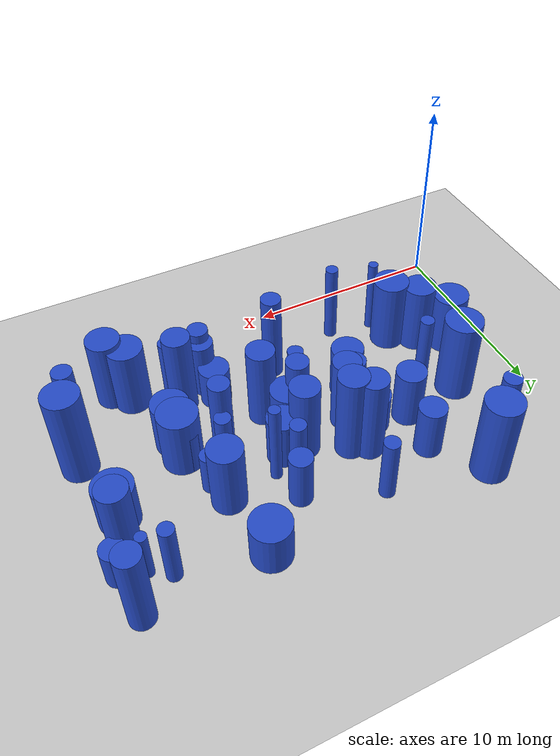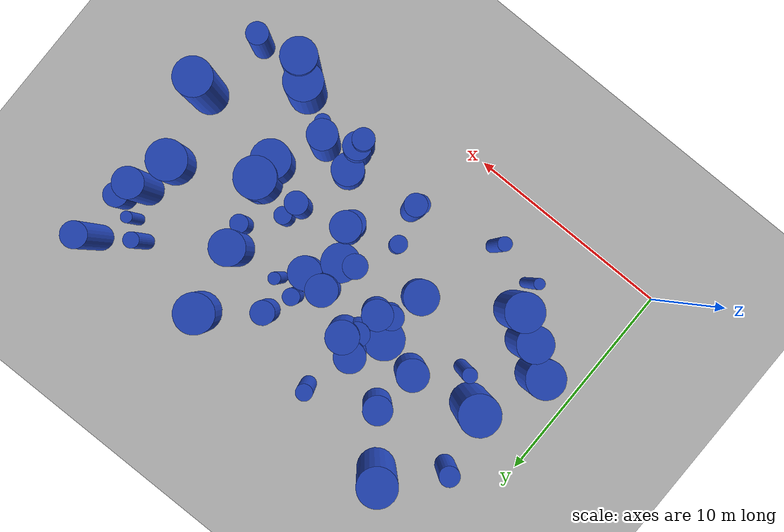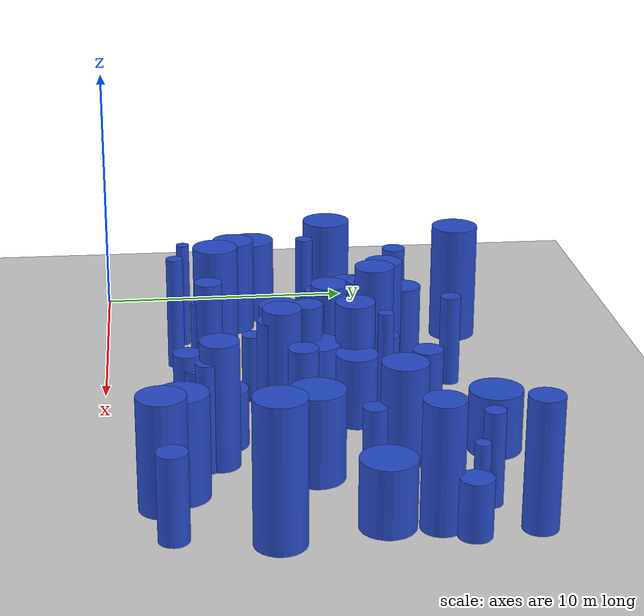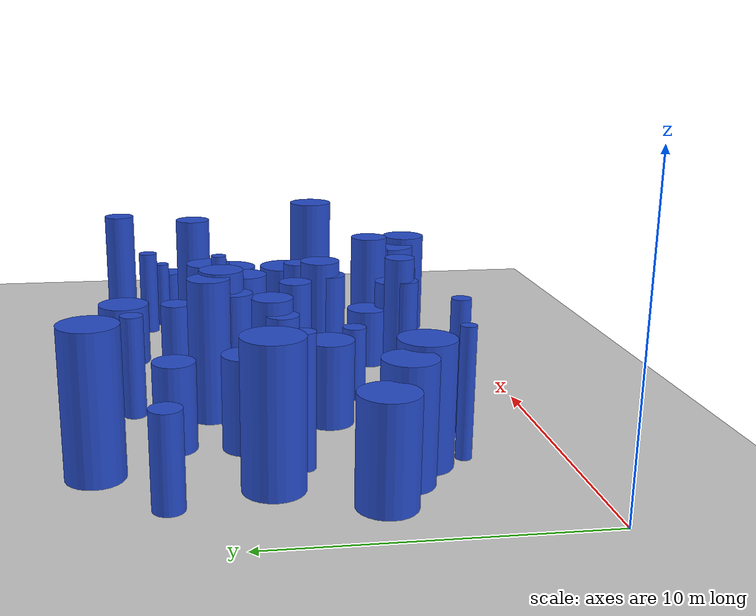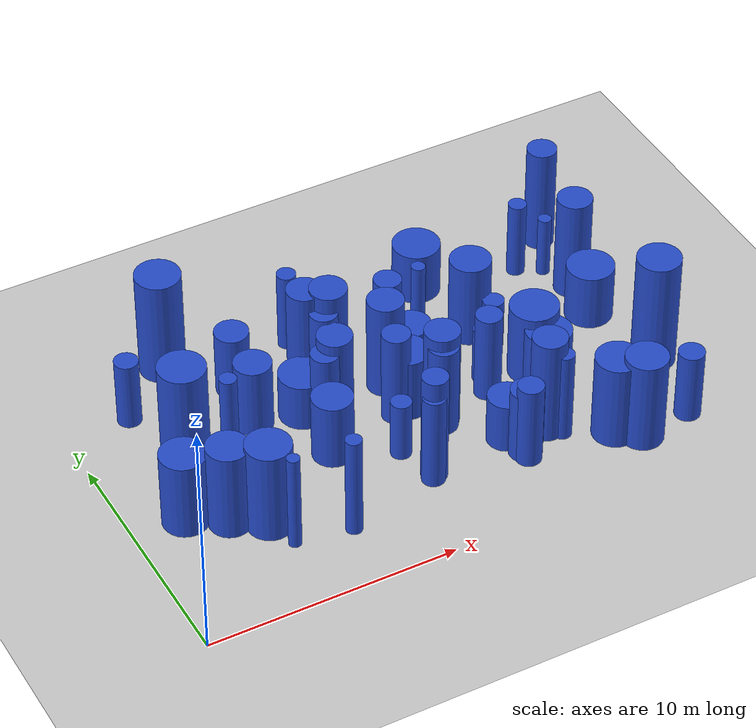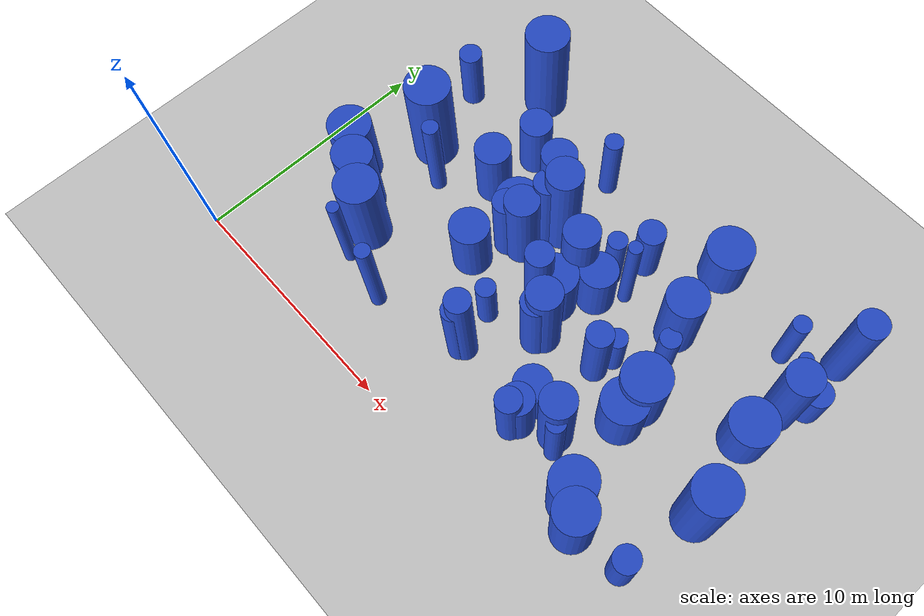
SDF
<sdf version="1.6">
 <world name="default">
  <model name="ground_plane">
   <static>1</static>
   <link name="link">
    <collision name="collision">
     <geometry><plane><normal>0 0 1</normal><size>100 100</size></plane></geometry>
     <surface><friction><ode><mu>100</mu><mu2>50</mu2></ode></friction></surface>
    </collision>
    <visual name="visual">
     <cast_shadows>0</cast_shadows>
     <geometry><plane><normal>0 0 1</normal><size>100 100</size></plane></geometry>
     <material>
      <script><uri>file://media/materials/scripts/gazebo.material</uri><name>Gazebo/Grey</name></script>
     </material>
    </visual>
   </link>
  </model>
  <model name="12">
   <static>0</static>
   <link name="link">
    <inertial>
     <mass>2</mass>
     <inertia><ixx>2.8515</ixx><ixy>0</ixy><ixz>0</ixz><iyy>2.8515</iyy><iyz>0</iyz><izz>0.315958</izz></inertia>
    </inertial>
    <collision name="collision">
     <geometry><cylinder><length>4.02009</length><radius>0.562101</radius></cylinder></geometry>
     <surface><contact><collide_without_contact>1</collide_without_contact></contact></surface>
    </collision>
    <visual name="visual">
     <geometry><cylinder><length>4.02009</length><radius>0.562101</radius></cylinder></geometry>
     <material>
      <script><uri>file://media/materials/scripts/gazebo.material</uri><name>Gazebo/Blue</name></script>
     </material>
    </visual>
    <gravity>0</gravity>
   </link>
   <pose>11.5625 7.45117 2.01004 0 -0 0</pose>
  </model>
  <model name="16">
   <static>0</static>
   <link name="link">
    <inertial>
     <mass>2</mass>
     <inertia><ixx>1.17439</ixx><ixy>0</ixy><ixz>0</ixz><iyy>1.17439</iyy><iyz>0</iyz><izz>0.167306</izz></inertia>
    </inertial>
    <collision name="collision">
     <geometry><cylinder><length>2.55821</length><radius>0.40903</radius></cylinder></geometry>
     <surface><contact><collide_without_contact>1</collide_without_contact></contact></surface>
    </collision>
    <visual name="visual">
     <geometry><cylinder><length>2.55821</length><radius>0.40903</radius></cylinder></geometry>
     <material>
      <script><uri>file://media/materials/scripts/gazebo.material</uri><name>Gazebo/Blue</name></script>
     </material>
    </visual>
    <gravity>0</gravity>
   </link>
   <pose>10.7144 5.49413 1.27911 0 -0 0</pose>
  </model>
  <model name="21">
   <static>0</static>
   <link name="link">
    <inertial>
     <mass>2</mass>
     <inertia><ixx>1.51849</ixx><ixy>0</ixy><ixz>0</ixz><iyy>1.51849</iyy><iyz>0</iyz><izz>0.311536</izz></inertia>
    </inertial>
    <collision name="collision">
     <geometry><cylinder><length>2.85943</length><radius>0.558154</radius></cylinder></geometry>
     <surface><contact><collide_without_contact>1</collide_without_contact></contact></surface>
    </collision>
    <visual name="visual">
     <geometry><cylinder><length>2.85943</length><radius>0.558154</radius></cylinder></geometry>
     <material>
      <script><uri>file://media/materials/scripts/gazebo.material</uri><name>Gazebo/Blue</name></script>
     </material>
    </visual>
    <gravity>0</gravity>
   </link>
   <pose>13.4368 11.5878 1.42972 0 -0 0</pose>
  </model>
  <model name="23">
   <static>0</static>
   <link name="link">
    <inertial>
     <mass>2</mass>
     <inertia>
      <ixx>1.21853</ixx>
      <ixy>0</ixy>
      <ixz>0</ixz>
      <iyy>1.21853</iyy>
      <iyz>0</iyz>
      <izz>0.0726974</izz>
     </inertia>
    </inertial>
    <collision name="collision">
     <geometry><cylinder><length>2.66328</length><radius>0.269625</radius></cylinder></geometry>
     <surface><contact><collide_without_contact>1</collide_without_contact></contact></surface>
    </collision>
    <visual name="visual">
     <geometry><cylinder><length>2.66328</length><radius>0.269625</radius></cylinder></geometry>
     <material>
      <script><uri>file://media/materials/scripts/gazebo.material</uri><name>Gazebo/Blue</name></script>
     </material>
    </visual>
    <gravity>0</gravity>
   </link>
   <pose>20.7295 12.1101 1.33164 0 -0 0</pose>
  </model>
  <model name="30">
   <static>0</static>
   <link name="link">
    <inertial>
     <mass>2</mass>
     <inertia><ixx>4.21766</ixx><ixy>0</ixy><ixz>0</ixz><iyy>4.21766</iyy><iyz>0</iyz><izz>0.543405</izz></inertia>
    </inertial>
    <collision name="collision">
     <geometry><cylinder><length>4.86577</length><radius>0.73716</radius></cylinder></geometry>
     <surface><contact><collide_without_contact>1</collide_without_contact></contact></surface>
    </collision>
    <visual name="visual">
     <geometry><cylinder><length>4.86577</length><radius>0.73716</radius></cylinder></geometry>
     <material>
      <script><uri>file://media/materials/scripts/gazebo.material</uri><name>Gazebo/Blue</name></script>
     </material>
    </visual>
    <gravity>0</gravity>
   </link>
   <pose>10.1121 10.083 2.43289 0 -0 0</pose>
  </model>
  <model name="38">
   <static>0</static>
   <link name="link">
    <inertial>
     <mass>2</mass>
     <inertia><ixx>2.59248</ixx><ixy>0</ixy><ixz>0</ixz><iyy>2.59248</iyy><iyz>0</iyz><izz>0.279767</izz></inertia>
    </inertial>
    <collision name="collision">
     <geometry><cylinder><length>3.83609</length><radius>0.52893</radius></cylinder></geometry>
     <surface><contact><collide_without_contact>1</collide_without_contact></contact></surface>
    </collision>
    <visual name="visual">
     <geometry><cylinder><length>3.83609</length><radius>0.52893</radius></cylinder></geometry>
     <material>
      <script><uri>file://media/materials/scripts/gazebo.material</uri><name>Gazebo/Blue</name></script>
     </material>
    </visual>
    <gravity>0</gravity>
   </link>
   <pose>15.2362 6.93709 1.91805 0 -0 0</pose>
  </model>
  <model name="53">
   <static>0</static>
   <link name="link">
    <inertial>
     <mass>2</mass>
     <inertia><ixx>1.81846</ixx><ixy>0</ixy><ixz>0</ixz><iyy>1.81846</iyy><iyz>0</iyz><izz>0.422521</izz></inertia>
    </inertial>
    <collision name="collision">
     <geometry><cylinder><length>3.10535</length><radius>0.650016</radius></cylinder></geometry>
     <surface><contact><collide_without_contact>1</collide_without_contact></contact></surface>
    </collision>
    <visual name="visual">
     <geometry><cylinder><length>3.10535</length><radius>0.650016</radius></cylinder></geometry>
     <material>
      <script><uri>file://media/materials/scripts/gazebo.material</uri><name>Gazebo/Blue</name></script>
     </material>
    </visual>
    <gravity>0</gravity>
   </link>
   <pose>14.8157 3.34289 1.55268 0 -0 0</pose>
  </model>
  <model name="73">
   <static>0</static>
   <link name="link">
    <inertial>
     <mass>2</mass>
     <inertia><ixx>2.98735</ixx><ixy>0</ixy><ixz>0</ixz><iyy>2.98735</iyy><iyz>0</iyz><izz>0.696623</izz></inertia>
    </inertial>
    <collision name="collision">
     <geometry><cylinder><length>3.97923</length><radius>0.834639</radius></cylinder></geometry>
     <surface><contact><collide_without_contact>1</collide_without_contact></contact></surface>
    </collision>
    <visual name="visual">
     <geometry><cylinder><length>3.97923</length><radius>0.834639</radius></cylinder></geometry>
     <material>
      <script><uri>file://media/materials/scripts/gazebo.material</uri><name>Gazebo/Blue</name></script>
     </material>
    </visual>
    <gravity>0</gravity>
   </link>
   <pose>19.0977 2.00565 1.98961 0 -0 0</pose>
  </model>
  <model name="90">
   <static>0</static>
   <link name="link">
    <inertial>
     <mass>2</mass>
     <inertia><ixx>1.4671</ixx><ixy>0</ixy><ixz>0</ixz><iyy>1.4671</iyy><iyz>0</iyz><izz>0.605664</izz></inertia>
    </inertial>
    <collision name="collision">
     <geometry><cylinder><length>2.64303</length><radius>0.778244</radius></cylinder></geometry>
     <surface><contact><collide_without_contact>1</collide_without_contact></contact></surface>
    </collision>
    <visual name="visual">
     <geometry><cylinder><length>2.64303</length><radius>0.778244</radius></cylinder></geometry>
     <material>
      <script><uri>file://media/materials/scripts/gazebo.material</uri><name>Gazebo/Blue</name></script>
     </material>
    </visual>
    <gravity>0</gravity>
   </link>
   <pose>13.1102 9.08462 1.32152 0 -0 0</pose>
  </model>
  <model name="94">
   <static>0</static>
   <link name="link">
    <inertial>
     <mass>2</mass>
     <inertia><ixx>2.70975</ixx><ixy>0</ixy><ixz>0</ixz><iyy>2.70975</iyy><iyz>0</iyz><izz>0.812838</izz></inertia>
    </inertial>
    <collision name="collision">
     <geometry><cylinder><length>3.71753</length><radius>0.901575</radius></cylinder></geometry>
     <surface><contact><collide_without_contact>1</collide_without_contact></contact></surface>
    </collision>
    <visual name="visual">
     <geometry><cylinder><length>3.71753</length><radius>0.901575</radius></cylinder></geometry>
     <material>
      <script><uri>file://media/materials/scripts/gazebo.material</uri><name>Gazebo/Blue</name></script>
     </material>
    </visual>
    <gravity>0</gravity>
   </link>
   <pose>18.3144 2.69711 1.85876 0 -0 0</pose>
  </model>
  <model name="123">
   <static>0</static>
   <link name="link">
    <inertial>
     <mass>2</mass>
     <inertia><ixx>1.65697</ixx><ixy>0</ixy><ixz>0</ixz><iyy>1.65697</iyy><iyz>0</iyz><izz>0.79456</izz></inertia>
    </inertial>
    <collision name="collision">
     <geometry><cylinder><length>2.74921</length><radius>0.891381</radius></cylinder></geometry>
     <surface><contact><collide_without_contact>1</collide_without_contact></contact></surface>
    </collision>
    <visual name="visual">
     <geometry><cylinder><length>2.74921</length><radius>0.891381</radius></cylinder></geometry>
     <material>
      <script><uri>file://media/materials/scripts/gazebo.material</uri><name>Gazebo/Blue</name></script>
     </material>
    </visual>
    <gravity>0</gravity>
   </link>
   <pose>12.1687 7.73836 1.3746 0 -0 0</pose>
  </model>
  <model name="130">
   <static>0</static>
   <link name="link">
    <inertial>
     <mass>2</mass>
     <inertia><ixx>1.01324</ixx><ixy>0</ixy><ixz>0</ixz><iyy>1.01324</iyy><iyz>0</iyz><izz>0.350577</izz></inertia>
    </inertial>
    <collision name="collision">
     <geometry><cylinder><length>2.24225</length><radius>0.592095</radius></cylinder></geometry>
     <surface><contact><collide_without_contact>1</collide_without_contact></contact></surface>
    </collision>
    <visual name="visual">
     <geometry><cylinder><length>2.24225</length><radius>0.592095</radius></cylinder></geometry>
     <material>
      <script><uri>file://media/materials/scripts/gazebo.material</uri><name>Gazebo/Blue</name></script>
     </material>
    </visual>
    <gravity>0</gravity>
   </link>
   <pose>17.2024 7.57168 1.12113 0 -0 0</pose>
  </model>
  <model name="138">
   <static>0</static>
   <link name="link">
    <inertial>
     <mass>2</mass>
     <inertia><ixx>3.29254</ixx><ixy>0</ixy><ixz>0</ixz><iyy>3.29254</iyy><iyz>0</iyz><izz>0.103481</izz></inertia>
    </inertial>
    <collision name="collision">
     <geometry><cylinder><length>4.40963</length><radius>0.321685</radius></cylinder></geometry>
     <surface><contact><collide_without_contact>1</collide_without_contact></contact></surface>
    </collision>
    <visual name="visual">
     <geometry><cylinder><length>4.40963</length><radius>0.321685</radius></cylinder></geometry>
     <material>
      <script><uri>file://media/materials/scripts/gazebo.material</uri><name>Gazebo/Blue</name></script>
     </material>
    </visual>
    <gravity>0</gravity>
   </link>
   <pose>7.26746 2.7238 2.20481 0 -0 0</pose>
  </model>
  <model name="140">
   <static>0</static>
   <link name="link">
    <inertial>
     <mass>2</mass>
     <inertia><ixx>2.29963</ixx><ixy>0</ixy><ixz>0</ixz><iyy>2.29963</iyy><iyz>0</iyz><izz>0.260765</izz></inertia>
    </inertial>
    <collision name="collision">
     <geometry><cylinder><length>3.6077</length><radius>0.510651</radius></cylinder></geometry>
     <surface><contact><collide_without_contact>1</collide_without_contact></contact></surface>
    </collision>
    <visual name="visual">
     <geometry><cylinder><length>3.6077</length><radius>0.510651</radius></cylinder></geometry>
     <material>
      <script><uri>file://media/materials/scripts/gazebo.material</uri><name>Gazebo/Blue</name></script>
     </material>
    </visual>
    <gravity>0</gravity>
   </link>
   <pose>14.7457 2.99016 1.80385 0 -0 0</pose>
  </model>
  <model name="150">
   <static>0</static>
   <link name="link">
    <inertial>
     <mass>2</mass>
     <inertia><ixx>3.72478</ixx><ixy>0</ixy><ixz>0</ixz><iyy>3.72478</iyy><iyz>0</iyz><izz>0.470803</izz></inertia>
    </inertial>
    <collision name="collision">
     <geometry><cylinder><length>4.57562</length><radius>0.686151</radius></cylinder></geometry>
     <surface><contact><collide_without_contact>1</collide_without_contact></contact></surface>
    </collision>
    <visual name="visual">
     <geometry><cylinder><length>4.57562</length><radius>0.686151</radius></cylinder></geometry>
     <material>
      <script><uri>file://media/materials/scripts/gazebo.material</uri><name>Gazebo/Blue</name></script>
     </material>
    </visual>
    <gravity>0</gravity>
   </link>
   <pose>16.135 4.02471 2.28781 0 -0 0</pose>
  </model>
  <model name="192">
   <static>0</static>
   <link name="link">
    <inertial>
     <mass>2</mass>
     <inertia><ixx>1.12736</ixx><ixy>0</ixy><ixz>0</ixz><iyy>1.12736</iyy><iyz>0</iyz><izz>0.893205</izz></inertia>
    </inertial>
    <collision name="collision">
     <geometry><cylinder><length>2.02103</length><radius>0.945095</radius></cylinder></geometry>
     <surface><contact><collide_without_contact>1</collide_without_contact></contact></surface>
    </collision>
    <visual name="visual">
     <geometry><cylinder><length>2.02103</length><radius>0.945095</radius></cylinder></geometry>
     <material>
      <script><uri>file://media/materials/scripts/gazebo.material</uri><name>Gazebo/Blue</name></script>
     </material>
    </visual>
    <gravity>0</gravity>
   </link>
   <pose>8.51962 9.17964 1.01052 0 -0 0</pose>
  </model>
  <model name="197">
   <static>0</static>
   <link name="link">
    <inertial>
     <mass>2</mass>
     <inertia><ixx>2.08718</ixx><ixy>0</ixy><ixz>0</ixz><iyy>2.08718</iyy><iyz>0</iyz><izz>0.148226</izz></inertia>
    </inertial>
    <collision name="collision">
     <geometry><cylinder><length>3.4754</length><radius>0.385002</radius></cylinder></geometry>
     <surface><contact><collide_without_contact>1</collide_without_contact></contact></surface>
    </collision>
    <visual name="visual">
     <geometry><cylinder><length>3.4754</length><radius>0.385002</radius></cylinder></geometry>
     <material>
      <script><uri>file://media/materials/scripts/gazebo.material</uri><name>Gazebo/Blue</name></script>
     </material>
    </visual>
    <gravity>0</gravity>
   </link>
   <pose>9.85029 13.0514 1.7377 0 -0 0</pose>
  </model>
  <model name="198">
   <static>0</static>
   <link name="link">
    <inertial>
     <mass>2</mass>
     <inertia><ixx>2.28454</ixx><ixy>0</ixy><ixz>0</ixz><iyy>2.28454</iyy><iyz>0</iyz><izz>0.315745</izz></inertia>
    </inertial>
    <collision name="collision">
     <geometry><cylinder><length>3.57212</length><radius>0.561912</radius></cylinder></geometry>
     <surface><contact><collide_without_contact>1</collide_without_contact></contact></surface>
    </collision>
    <visual name="visual">
     <geometry><cylinder><length>3.57212</length><radius>0.561912</radius></cylinder></geometry>
     <material>
      <script><uri>file://media/materials/scripts/gazebo.material</uri><name>Gazebo/Blue</name></script>
     </material>
    </visual>
    <gravity>0</gravity>
   </link>
   <pose>8.96137 8.1767 1.78606 0 -0 0</pose>
  </model>
  <model name="214">
   <static>0</static>
   <link name="link">
    <inertial>
     <mass>2</mass>
     <inertia><ixx>2.84705</ixx><ixy>0</ixy><ixz>0</ixz><iyy>2.84705</iyy><iyz>0</iyz><izz>0.209624</izz></inertia>
    </inertial>
    <collision name="collision">
     <geometry><cylinder><length>4.05628</length><radius>0.457847</radius></cylinder></geometry>
     <surface><contact><collide_without_contact>1</collide_without_contact></contact></surface>
    </collision>
    <visual name="visual">
     <geometry><cylinder><length>4.05628</length><radius>0.457847</radius></cylinder></geometry>
     <material>
      <script><uri>file://media/materials/scripts/gazebo.material</uri><name>Gazebo/Blue</name></script>
     </material>
    </visual>
    <gravity>0</gravity>
   </link>
   <pose>11.0856 3.67308 2.02814 0 -0 0</pose>
  </model>
  <model name="219">
   <static>0</static>
   <link name="link">
    <inertial>
     <mass>2</mass>
     <inertia><ixx>3.49562</ixx><ixy>0</ixy><ixz>0</ixz><iyy>3.49562</iyy><iyz>0</iyz><izz>0.488831</izz></inertia>
    </inertial>
    <collision name="collision">
     <geometry><cylinder><length>4.4167</length><radius>0.699164</radius></cylinder></geometry>
     <surface><contact><collide_without_contact>1</collide_without_contact></contact></surface>
    </collision>
    <visual name="visual">
     <geometry><cylinder><length>4.4167</length><radius>0.699164</radius></cylinder></geometry>
     <material>
      <script><uri>file://media/materials/scripts/gazebo.material</uri><name>Gazebo/Blue</name></script>
     </material>
    </visual>
    <gravity>0</gravity>
   </link>
   <pose>12.9305 6.40169 2.20835 0 -0 0</pose>
  </model>
  <model name="222">
   <static>0</static>
   <link name="link">
    <inertial>
     <mass>2</mass>
     <inertia><ixx>2.55571</ixx><ixy>0</ixy><ixz>0</ixz><iyy>2.55571</iyy><iyz>0</iyz><izz>0.681111</izz></inertia>
    </inertial>
    <collision name="collision">
     <geometry><cylinder><length>3.64567</length><radius>0.825295</radius></cylinder></geometry>
     <surface><contact><collide_without_contact>1</collide_without_contact></contact></surface>
    </collision>
    <visual name="visual">
     <geometry><cylinder><length>3.64567</length><radius>0.825295</radius></cylinder></geometry>
     <material>
      <script><uri>file://media/materials/scripts/gazebo.material</uri><name>Gazebo/Blue</name></script>
     </material>
    </visual>
    <gravity>0</gravity>
   </link>
   <pose>16.3443 10.303 1.82283 0 -0 0</pose>
  </model>
  <model name="234">
   <static>0</static>
   <link name="link">
    <inertial>
     <mass>2</mass>
     <inertia><ixx>3.89752</ixx><ixy>0</ixy><ixz>0</ixz><iyy>3.89752</iyy><iyz>0</iyz><izz>0.881246</izz></inertia>
    </inertial>
    <collision name="collision">
     <geometry><cylinder><length>4.55427</length><radius>0.938747</radius></cylinder></geometry>
     <surface><contact><collide_without_contact>1</collide_without_contact></contact></surface>
    </collision>
    <visual name="visual">
     <geometry><cylinder><length>4.55427</length><radius>0.938747</radius></cylinder></geometry>
     <material>
      <script><uri>file://media/materials/scripts/gazebo.material</uri><name>Gazebo/Blue</name></script>
     </material>
    </visual>
    <gravity>0</gravity>
   </link>
   <pose>3.53021 9.00128 2.27713 0 -0 0</pose>
  </model>
  <model name="243">
   <static>0</static>
   <link name="link">
    <inertial>
     <mass>2</mass>
     <inertia><ixx>3.04842</ixx><ixy>0</ixy><ixz>0</ixz><iyy>3.04842</iyy><iyz>0</iyz><izz>0.115591</izz></inertia>
    </inertial>
    <collision name="collision">
     <geometry><cylinder><length>4.236</length><radius>0.339987</radius></cylinder></geometry>
     <surface><contact><collide_without_contact>1</collide_without_contact></contact></surface>
    </collision>
    <visual name="visual">
     <geometry><cylinder><length>4.236</length><radius>0.339987</radius></cylinder></geometry>
     <material>
      <script><uri>file://media/materials/scripts/gazebo.material</uri><name>Gazebo/Blue</name></script>
     </material>
    </visual>
    <gravity>0</gravity>
   </link>
   <pose>4.88177 7.95931 2.118 0 -0 0</pose>
  </model>
  <model name="245">
   <static>0</static>
   <link name="link">
    <inertial>
     <mass>2</mass>
     <inertia><ixx>3.23651</ixx><ixy>0</ixy><ixz>0</ixz><iyy>3.23651</iyy><iyz>0</iyz><izz>0.527564</izz></inertia>
    </inertial>
    <collision name="collision">
     <geometry><cylinder><length>4.22331</length><radius>0.726336</radius></cylinder></geometry>
     <surface><contact><collide_without_contact>1</collide_without_contact></contact></surface>
    </collision>
    <visual name="visual">
     <geometry><cylinder><length>4.22331</length><radius>0.726336</radius></cylinder></geometry>
     <material>
      <script><uri>file://media/materials/scripts/gazebo.material</uri><name>Gazebo/Blue</name></script>
     </material>
    </visual>
    <gravity>0</gravity>
   </link>
   <pose>12.0273 9.1395 2.11166 0 -0 0</pose>
  </model>
  <model name="249">
   <static>0</static>
   <link name="link">
    <inertial>
     <mass>2</mass>
     <inertia>
      <ixx>0.915067</ixx>
      <ixy>0</ixy>
      <ixz>0</ixz>
      <iyy>0.915067</iyy>
      <iyz>0</iyz>
      <izz>0.181299</izz>
     </inertia>
    </inertial>
    <collision name="collision">
     <geometry><cylinder><length>2.22407</length><radius>0.425792</radius></cylinder></geometry>
     <surface><contact><collide_without_contact>1</collide_without_contact></contact></surface>
    </collision>
    <visual name="visual">
     <geometry><cylinder><length>2.22407</length><radius>0.425792</radius></cylinder></geometry>
     <material>
      <script><uri>file://media/materials/scripts/gazebo.material</uri><name>Gazebo/Blue</name></script>
     </material>
    </visual>
    <gravity>0</gravity>
   </link>
   <pose>16.7713 9.23557 1.11204 0 -0 0</pose>
  </model>
  <model name="283">
   <static>0</static>
   <link name="link">
    <inertial>
     <mass>2</mass>
     <inertia><ixx>2.93884</ixx><ixy>0</ixy><ixz>0</ixz><iyy>2.93884</iyy><iyz>0</iyz><izz>0.487944</izz></inertia>
    </inertial>
    <collision name="collision">
     <geometry><cylinder><length>4.02109</length><radius>0.69853</radius></cylinder></geometry>
     <surface><contact><collide_without_contact>1</collide_without_contact></contact></surface>
    </collision>
    <visual name="visual">
     <geometry><cylinder><length>4.02109</length><radius>0.69853</radius></cylinder></geometry>
     <material>
      <script><uri>file://media/materials/scripts/gazebo.material</uri><name>Gazebo/Blue</name></script>
     </material>
    </visual>
    <gravity>0</gravity>
   </link>
   <pose>9.5205 8.46149 2.01055 0 -0 0</pose>
  </model>
  <model name="287">
   <static>0</static>
   <link name="link">
    <inertial>
     <mass>2</mass>
     <inertia><ixx>1.9277</ixx><ixy>0</ixy><ixz>0</ixz><iyy>1.9277</iyy><iyz>0</iyz><izz>0.133177</izz></inertia>
    </inertial>
    <collision name="collision">
     <geometry><cylinder><length>3.34165</length><radius>0.364934</radius></cylinder></geometry>
     <surface><contact><collide_without_contact>1</collide_without_contact></contact></surface>
    </collision>
    <visual name="visual">
     <geometry><cylinder><length>3.34165</length><radius>0.364934</radius></cylinder></geometry>
     <material>
      <script><uri>file://media/materials/scripts/gazebo.material</uri><name>Gazebo/Blue</name></script>
     </material>
    </visual>
    <gravity>0</gravity>
   </link>
   <pose>19.8028 12.6805 1.67083 0 -0 0</pose>
  </model>
  <model name="298">
   <static>0</static>
   <link name="link">
    <inertial>
     <mass>2</mass>
     <inertia><ixx>1.82087</ixx><ixy>0</ixy><ixz>0</ixz><iyy>1.82087</iyy><iyz>0</iyz><izz>0.556141</izz></inertia>
    </inertial>
    <collision name="collision">
     <geometry><cylinder><length>3.0425</length><radius>0.745749</radius></cylinder></geometry>
     <surface><contact><collide_without_contact>1</collide_without_contact></contact></surface>
    </collision>
    <visual name="visual">
     <geometry><cylinder><length>3.0425</length><radius>0.745749</radius></cylinder></geometry>
     <material>
      <script><uri>file://media/materials/scripts/gazebo.material</uri><name>Gazebo/Blue</name></script>
     </material>
    </visual>
    <gravity>0</gravity>
   </link>
   <pose>6.64462 9.55126 1.52125 0 -0 0</pose>
  </model>
  <model name="306">
   <static>0</static>
   <link name="link">
    <inertial>
     <mass>2</mass>
     <inertia>
      <ixx>1.04102</ixx>
      <ixy>0</ixy>
      <ixz>0</ixz>
      <iyy>1.04102</iyy>
      <iyz>0</iyz>
      <izz>0.0654955</izz>
     </inertia>
    </inertial>
    <collision name="collision">
     <geometry><cylinder><length>2.4596</length><radius>0.255921</radius></cylinder></geometry>
     <surface><contact><collide_without_contact>1</collide_without_contact></contact></surface>
    </collision>
    <visual name="visual">
     <geometry><cylinder><length>2.4596</length><radius>0.255921</radius></cylinder></geometry>
     <material>
      <script><uri>file://media/materials/scripts/gazebo.material</uri><name>Gazebo/Blue</name></script>
     </material>
    </visual>
    <gravity>0</gravity>
   </link>
   <pose>12.947 9.72197 1.2298 0 -0 0</pose>
  </model>
  <model name="308">
   <static>0</static>
   <link name="link">
    <inertial>
     <mass>2</mass>
     <inertia><ixx>1.05267</ixx><ixy>0</ixy><ixz>0</ixz><iyy>1.05267</iyy><iyz>0</iyz><izz>0.580007</izz></inertia>
    </inertial>
    <collision name="collision">
     <geometry><cylinder><length>2.13916</length><radius>0.761582</radius></cylinder></geometry>
     <surface><contact><collide_without_contact>1</collide_without_contact></contact></surface>
    </collision>
    <visual name="visual">
     <geometry><cylinder><length>2.13916</length><radius>0.761582</radius></cylinder></geometry>
     <material>
      <script><uri>file://media/materials/scripts/gazebo.material</uri><name>Gazebo/Blue</name></script>
     </material>
    </visual>
    <gravity>0</gravity>
   </link>
   <pose>14.5537 4.33358 1.06958 0 -0 0</pose>
  </model>
  <model name="311">
   <static>0</static>
   <link name="link">
    <inertial>
     <mass>2</mass>
     <inertia><ixx>3.00659</ixx><ixy>0</ixy><ixz>0</ixz><iyy>3.00659</iyy><iyz>0</iyz><izz>0.799842</izz></inertia>
    </inertial>
    <collision name="collision">
     <geometry><cylinder><length>3.95475</length><radius>0.894339</radius></cylinder></geometry>
     <surface><contact><collide_without_contact>1</collide_without_contact></contact></surface>
    </collision>
    <visual name="visual">
     <geometry><cylinder><length>3.95475</length><radius>0.894339</radius></cylinder></geometry>
     <material>
      <script><uri>file://media/materials/scripts/gazebo.material</uri><name>Gazebo/Blue</name></script>
     </material>
    </visual>
    <gravity>0</gravity>
   </link>
   <pose>4.70986 4.40026 1.97737 0 -0 0</pose>
  </model>
  <model name="323">
   <static>0</static>
   <link name="link">
    <inertial>
     <mass>2</mass>
     <inertia><ixx>3.72078</ixx><ixy>0</ixy><ixz>0</ixz><iyy>3.72078</iyy><iyz>0</iyz><izz>0.360921</izz></inertia>
    </inertial>
    <collision name="collision">
     <geometry><cylinder><length>4.60889</length><radius>0.600767</radius></cylinder></geometry>
     <surface><contact><collide_without_contact>1</collide_without_contact></contact></surface>
    </collision>
    <visual name="visual">
     <geometry><cylinder><length>4.60889</length><radius>0.600767</radius></cylinder></geometry>
     <material>
      <script><uri>file://media/materials/scripts/gazebo.material</uri><name>Gazebo/Blue</name></script>
     </material>
    </visual>
    <gravity>0</gravity>
   </link>
   <pose>21.5702 13.8767 2.30445 0 -0 0</pose>
  </model>
  <model name="342">
   <static>0</static>
   <link name="link">
    <inertial>
     <mass>2</mass>
     <inertia>
      <ixx>3.39881</ixx>
      <ixy>0</ixy>
      <ixz>0</ixz>
      <iyy>3.39881</iyy>
      <iyz>0</iyz>
      <izz>0.0766285</izz>
     </inertia>
    </inertial>
    <collision name="collision">
     <geometry><cylinder><length>4.49032</length><radius>0.276819</radius></cylinder></geometry>
     <surface><contact><collide_without_contact>1</collide_without_contact></contact></surface>
    </collision>
    <visual name="visual">
     <geometry><cylinder><length>4.49032</length><radius>0.276819</radius></cylinder></geometry>
     <material>
      <script><uri>file://media/materials/scripts/gazebo.material</uri><name>Gazebo/Blue</name></script>
     </material>
    </visual>
    <gravity>0</gravity>
   </link>
   <pose>13.8901 9.98542 2.24516 0 -0 0</pose>
  </model>
  <model name="350">
   <static>0</static>
   <link name="link">
    <inertial>
     <mass>2</mass>
     <inertia><ixx>3.99448</ixx><ixy>0</ixy><ixz>0</ixz><iyy>3.99448</iyy><iyz>0</iyz><izz>0.827427</izz></inertia>
    </inertial>
    <collision name="collision">
     <geometry><cylinder><length>4.63515</length><radius>0.90963</radius></cylinder></geometry>
     <surface><contact><collide_without_contact>1</collide_without_contact></contact></surface>
    </collision>
    <visual name="visual">
     <geometry><cylinder><length>4.63515</length><radius>0.90963</radius></cylinder></geometry>
     <material>
      <script><uri>file://media/materials/scripts/gazebo.material</uri><name>Gazebo/Blue</name></script>
     </material>
    </visual>
    <gravity>0</gravity>
   </link>
   <pose>4.97973 14.0597 2.31757 0 -0 0</pose>
  </model>
  <model name="352">
   <static>0</static>
   <link name="link">
    <inertial>
     <mass>2</mass>
     <inertia><ixx>1.66299</ixx><ixy>0</ixy><ixz>0</ixz><iyy>1.66299</iyy><iyz>0</iyz><izz>0.654766</izz></inertia>
    </inertial>
    <collision name="collision">
     <geometry><cylinder><length>2.83084</length><radius>0.809176</radius></cylinder></geometry>
     <surface><contact><collide_without_contact>1</collide_without_contact></contact></surface>
    </collision>
    <visual name="visual">
     <geometry><cylinder><length>2.83084</length><radius>0.809176</radius></cylinder></geometry>
     <material>
      <script><uri>file://media/materials/scripts/gazebo.material</uri><name>Gazebo/Blue</name></script>
     </material>
    </visual>
    <gravity>0</gravity>
   </link>
   <pose>8.47594 6.6825 1.41542 0 -0 0</pose>
  </model>
  <model name="358">
   <static>0</static>
   <link name="link">
    <inertial>
     <mass>2</mass>
     <inertia><ixx>1.0758</ixx><ixy>0</ixy><ixz>0</ixz><iyy>1.0758</iyy><iyz>0</iyz><izz>0.166848</izz></inertia>
    </inertial>
    <collision name="collision">
     <geometry><cylinder><length>2.44013</length><radius>0.408471</radius></cylinder></geometry>
     <surface><contact><collide_without_contact>1</collide_without_contact></contact></surface>
    </collision>
    <visual name="visual">
     <geometry><cylinder><length>2.44013</length><radius>0.408471</radius></cylinder></geometry>
     <material>
      <script><uri>file://media/materials/scripts/gazebo.material</uri><name>Gazebo/Blue</name></script>
     </material>
    </visual>
    <gravity>0</gravity>
   </link>
   <pose>15.4771 7.72975 1.22007 0 -0 0</pose>
  </model>
  <model name="361">
   <static>0</static>
   <link name="link">
    <inertial>
     <mass>2</mass>
     <inertia><ixx>3.06536</ixx><ixy>0</ixy><ixz>0</ixz><iyy>3.06536</iyy><iyz>0</iyz><izz>0.306702</izz></inertia>
    </inertial>
    <collision name="collision">
     <geometry><cylinder><length>4.17996</length><radius>0.553807</radius></cylinder></geometry>
     <surface><contact><collide_without_contact>1</collide_without_contact></contact></surface>
    </collision>
    <visual name="visual">
     <geometry><cylinder><length>4.17996</length><radius>0.553807</radius></cylinder></geometry>
     <material>
      <script><uri>file://media/materials/scripts/gazebo.material</uri><name>Gazebo/Blue</name></script>
     </material>
    </visual>
    <gravity>0</gravity>
   </link>
   <pose>9.67139 9.63086 2.08998 0 -0 0</pose>
  </model>
  <model name="374">
   <static>0</static>
   <link name="link">
    <inertial>
     <mass>2</mass>
     <inertia><ixx>1.42235</ixx><ixy>0</ixy><ixz>0</ixz><iyy>1.42235</iyy><iyz>0</iyz><izz>0.91226</izz></inertia>
    </inertial>
    <collision name="collision">
     <geometry><cylinder><length>2.40776</length><radius>0.955123</radius></cylinder></geometry>
     <surface><contact><collide_without_contact>1</collide_without_contact></contact></surface>
    </collision>
    <visual name="visual">
     <geometry><cylinder><length>2.40776</length><radius>0.955123</radius></cylinder></geometry>
     <material>
      <script><uri>file://media/materials/scripts/gazebo.material</uri><name>Gazebo/Blue</name></script>
     </material>
    </visual>
    <gravity>0</gravity>
   </link>
   <pose>21.0036 9.07175 1.20388 0 -0 0</pose>
  </model>
  <model name="392">
   <static>0</static>
   <link name="link">
    <inertial>
     <mass>2</mass>
     <inertia><ixx>2.23905</ixx><ixy>0</ixy><ixz>0</ixz><iyy>2.23905</iyy><iyz>0</iyz><izz>0.815202</izz></inertia>
    </inertial>
    <collision name="collision">
     <geometry><cylinder><length>3.31492</length><radius>0.902886</radius></cylinder></geometry>
     <surface><contact><collide_without_contact>1</collide_without_contact></contact></surface>
    </collision>
    <visual name="visual">
     <geometry><cylinder><length>3.31492</length><radius>0.902886</radius></cylinder></geometry>
     <material>
      <script><uri>file://media/materials/scripts/gazebo.material</uri><name>Gazebo/Blue</name></script>
     </material>
    </visual>
    <gravity>0</gravity>
   </link>
   <pose>2.08704 6.0398 1.65746 0 -0 0</pose>
  </model>
  <model name="399">
   <static>0</static>
   <link name="link">
    <inertial>
     <mass>2</mass>
     <inertia><ixx>2.73167</ixx><ixy>0</ixy><ixz>0</ixz><iyy>2.73167</iyy><iyz>0</iyz><izz>0.698372</izz></inertia>
    </inertial>
    <collision name="collision">
     <geometry><cylinder><length>3.78086</length><radius>0.835686</radius></cylinder></geometry>
     <surface><contact><collide_without_contact>1</collide_without_contact></contact></surface>
    </collision>
    <visual name="visual">
     <geometry><cylinder><length>3.78086</length><radius>0.835686</radius></cylinder></geometry>
     <material>
      <script><uri>file://media/materials/scripts/gazebo.material</uri><name>Gazebo/Blue</name></script>
     </material>
    </visual>
    <gravity>0</gravity>
   </link>
   <pose>3.46861 5.17771 1.89043 0 -0 0</pose>
  </model>
  <model name="400">
   <static>0</static>
   <link name="link">
    <inertial>
     <mass>2</mass>
     <inertia><ixx>2.67366</ixx><ixy>0</ixy><ixz>0</ixz><iyy>2.67366</iyy><iyz>0</iyz><izz>0.135186</izz></inertia>
    </inertial>
    <collision name="collision">
     <geometry><cylinder><length>3.95429</length><radius>0.367677</radius></cylinder></geometry>
     <surface><contact><collide_without_contact>1</collide_without_contact></contact></surface>
    </collision>
    <visual name="visual">
     <geometry><cylinder><length>3.95429</length><radius>0.367677</radius></cylinder></geometry>
     <material>
      <script><uri>file://media/materials/scripts/gazebo.material</uri><name>Gazebo/Blue</name></script>
     </material>
    </visual>
    <gravity>0</gravity>
   </link>
   <pose>16.5328 3.55565 1.97714 0 -0 0</pose>
  </model>
  <model name="406">
   <static>0</static>
   <link name="link">
    <inertial>
     <mass>2</mass>
     <inertia><ixx>2.74826</ixx><ixy>0</ixy><ixz>0</ixz><iyy>2.74826</iyy><iyz>0</iyz><izz>0.36143</izz></inertia>
    </inertial>
    <collision name="collision">
     <geometry><cylinder><length>3.92496</length><radius>0.60119</radius></cylinder></geometry>
     <surface><contact><collide_without_contact>1</collide_without_contact></contact></surface>
    </collision>
    <visual name="visual">
     <geometry><cylinder><length>3.92496</length><radius>0.60119</radius></cylinder></geometry>
     <material>
      <script><uri>file://media/materials/scripts/gazebo.material</uri><name>Gazebo/Blue</name></script>
     </material>
    </visual>
    <gravity>0</gravity>
   </link>
   <pose>12.8226 6.10273 1.96248 0 -0 0</pose>
  </model>
  <model name="408">
   <static>0</static>
   <link name="link">
    <inertial>
     <mass>2</mass>
     <inertia><ixx>1.55919</ixx><ixy>0</ixy><ixz>0</ixz><iyy>1.55919</iyy><iyz>0</iyz><izz>0.226351</izz></inertia>
    </inertial>
    <collision name="collision">
     <geometry><cylinder><length>2.94552</length><radius>0.475763</radius></cylinder></geometry>
     <surface><contact><collide_without_contact>1</collide_without_contact></contact></surface>
    </collision>
    <visual name="visual">
     <geometry><cylinder><length>2.94552</length><radius>0.475763</radius></cylinder></geometry>
     <material>
      <script><uri>file://media/materials/scripts/gazebo.material</uri><name>Gazebo/Blue</name></script>
     </material>
    </visual>
    <gravity>0</gravity>
   </link>
   <pose>2.60325 11.9603 1.47276 0 -0 0</pose>
  </model>
  <model name="414">
   <static>0</static>
   <link name="link">
    <inertial>
     <mass>2</mass>
     <inertia><ixx>4.05527</ixx><ixy>0</ixy><ixz>0</ixz><iyy>4.05527</iyy><iyz>0</iyz><izz>0.258949</izz></inertia>
    </inertial>
    <collision name="collision">
     <geometry><cylinder><length>4.85333</length><radius>0.50887</radius></cylinder></geometry>
     <surface><contact><collide_without_contact>1</collide_without_contact></contact></surface>
    </collision>
    <visual name="visual">
     <geometry><cylinder><length>4.85333</length><radius>0.50887</radius></cylinder></geometry>
     <material>
      <script><uri>file://media/materials/scripts/gazebo.material</uri><name>Gazebo/Blue</name></script>
     </material>
    </visual>
    <gravity>0</gravity>
   </link>
   <pose>11.2127 3.85628 2.42666 0 -0 0</pose>
  </model>
  <model name="417">
   <static>0</static>
   <link name="link">
    <inertial>
     <mass>2</mass>
     <inertia><ixx>1.83035</ixx><ixy>0</ixy><ixz>0</ixz><iyy>1.83035</iyy><iyz>0</iyz><izz>0.15548</izz></inertia>
    </inertial>
    <collision name="collision">
     <geometry><cylinder><length>3.24279</length><radius>0.394309</radius></cylinder></geometry>
     <surface><contact><collide_without_contact>1</collide_without_contact></contact></surface>
    </collision>
    <visual name="visual">
     <geometry><cylinder><length>3.24279</length><radius>0.394309</radius></cylinder></geometry>
     <material>
      <script><uri>file://media/materials/scripts/gazebo.material</uri><name>Gazebo/Blue</name></script>
     </material>
    </visual>
    <gravity>0</gravity>
   </link>
   <pose>12.8936 10.228 1.62139 0 -0 0</pose>
  </model>
  <model name="427">
   <static>0</static>
   <link name="link">
    <inertial>
     <mass>2</mass>
     <inertia><ixx>1.31572</ixx><ixy>0</ixy><ixz>0</ixz><iyy>1.31572</iyy><iyz>0</iyz><izz>0.919306</izz></inertia>
    </inertial>
    <collision name="collision">
     <geometry><cylinder><length>2.26636</length><radius>0.958805</radius></cylinder></geometry>
     <surface><contact><collide_without_contact>1</collide_without_contact></contact></surface>
    </collision>
    <visual name="visual">
     <geometry><cylinder><length>2.26636</length><radius>0.958805</radius></cylinder></geometry>
     <material>
      <script><uri>file://media/materials/scripts/gazebo.material</uri><name>Gazebo/Blue</name></script>
     </material>
    </visual>
    <gravity>0</gravity>
   </link>
   <pose>15.7981 13.5899 1.13318 0 -0 0</pose>
  </model>
  <model name="435">
   <static>0</static>
   <link name="link">
    <inertial>
     <mass>2</mass>
     <inertia><ixx>1.6985</ixx><ixy>0</ixy><ixz>0</ixz><iyy>1.6985</iyy><iyz>0</iyz><izz>0.267198</izz></inertia>
    </inertial>
    <collision name="collision">
     <geometry><cylinder><length>3.06421</length><radius>0.516912</radius></cylinder></geometry>
     <surface><contact><collide_without_contact>1</collide_without_contact></contact></surface>
    </collision>
    <visual name="visual">
     <geometry><cylinder><length>3.06421</length><radius>0.516912</radius></cylinder></geometry>
     <material>
      <script><uri>file://media/materials/scripts/gazebo.material</uri><name>Gazebo/Blue</name></script>
     </material>
    </visual>
    <gravity>0</gravity>
   </link>
   <pose>21.2751 2.29033 1.53211 0 -0 0</pose>
  </model>
  <model name="438">
   <static>0</static>
   <link name="link">
    <inertial>
     <mass>2</mass>
     <inertia><ixx>1.56784</ixx><ixy>0</ixy><ixz>0</ixz><iyy>1.56784</iyy><iyz>0</iyz><izz>0.459031</izz></inertia>
    </inertial>
    <collision name="collision">
     <geometry><cylinder><length>2.83372</length><radius>0.677518</radius></cylinder></geometry>
     <surface><contact><collide_without_contact>1</collide_without_contact></contact></surface>
    </collision>
    <visual name="visual">
     <geometry><cylinder><length>2.83372</length><radius>0.677518</radius></cylinder></geometry>
     <material>
      <script><uri>file://media/materials/scripts/gazebo.material</uri><name>Gazebo/Blue</name></script>
     </material>
    </visual>
    <gravity>0</gravity>
   </link>
   <pose>6.84041 11.718 1.41686 0 -0 0</pose>
  </model>
  <model name="443">
   <static>0</static>
   <link name="link">
    <inertial>
     <mass>2</mass>
     <inertia>
      <ixx>0.851384</ixx>
      <ixy>0</ixy>
      <ixz>0</ixz>
      <iyy>0.851384</iyy>
      <iyz>0</iyz>
      <izz>0.325548</izz>
     </inertia>
    </inertial>
    <collision name="collision">
     <geometry><cylinder><length>2.03265</length><radius>0.570568</radius></cylinder></geometry>
     <surface><contact><collide_without_contact>1</collide_without_contact></contact></surface>
    </collision>
    <visual name="visual">
     <geometry><cylinder><length>2.03265</length><radius>0.570568</radius></cylinder></geometry>
     <material>
      <script><uri>file://media/materials/scripts/gazebo.material</uri><name>Gazebo/Blue</name></script>
     </material>
    </visual>
    <gravity>0</gravity>
   </link>
   <pose>21.8664 11.7168 1.01632 0 -0 0</pose>
  </model>
  <model name="452">
   <static>0</static>
   <link name="link">
    <inertial>
     <mass>2</mass>
     <inertia><ixx>3.54892</ixx><ixy>0</ixy><ixz>0</ixz><iyy>3.54892</iyy><iyz>0</iyz><izz>0.499568</izz></inertia>
    </inertial>
    <collision name="collision">
     <geometry><cylinder><length>4.44913</length><radius>0.706801</radius></cylinder></geometry>
     <surface><contact><collide_without_contact>1</collide_without_contact></contact></surface>
    </collision>
    <visual name="visual">
     <geometry><cylinder><length>4.44913</length><radius>0.706801</radius></cylinder></geometry>
     <material>
      <script><uri>file://media/materials/scripts/gazebo.material</uri><name>Gazebo/Blue</name></script>
     </material>
    </visual>
    <gravity>0</gravity>
   </link>
   <pose>21.2239 10.7618 2.22457 0 -0 0</pose>
  </model>
  <model name="464">
   <static>0</static>
   <link name="link">
    <inertial>
     <mass>2</mass>
     <inertia><ixx>4.04179</ixx><ixy>0</ixy><ixz>0</ixz><iyy>4.04179</iyy><iyz>0</iyz><izz>0.494362</izz></inertia>
    </inertial>
    <collision name="collision">
     <geometry><cylinder><length>4.77155</length><radius>0.703109</radius></cylinder></geometry>
     <surface><contact><collide_without_contact>1</collide_without_contact></contact></surface>
    </collision>
    <visual name="visual">
     <geometry><cylinder><length>4.77155</length><radius>0.703109</radius></cylinder></geometry>
     <material>
      <script><uri>file://media/materials/scripts/gazebo.material</uri><name>Gazebo/Blue</name></script>
     </material>
    </visual>
    <gravity>0</gravity>
   </link>
   <pose>9.34047 10.5322 2.38577 0 -0 0</pose>
  </model>
  <model name="471">
   <static>0</static>
   <link name="link">
    <inertial>
     <mass>2</mass>
     <inertia><ixx>2.21199</ixx><ixy>0</ixy><ixz>0</ixz><iyy>2.21199</iyy><iyz>0</iyz><izz>0.944067</izz></inertia>
    </inertial>
    <collision name="collision">
     <geometry><cylinder><length>3.23106</length><radius>0.971631</radius></cylinder></geometry>
     <surface><contact><collide_without_contact>1</collide_without_contact></contact></surface>
    </collision>
    <visual name="visual">
     <geometry><cylinder><length>3.23106</length><radius>0.971631</radius></cylinder></geometry>
     <material>
      <script><uri>file://media/materials/scripts/gazebo.material</uri><name>Gazebo/Blue</name></script>
     </material>
    </visual>
    <gravity>0</gravity>
   </link>
   <pose>17.3733 7.21068 1.61553 0 -0 0</pose>
  </model>
  <model name="482">
   <static>0</static>
   <link name="link">
    <inertial>
     <mass>2</mass>
     <inertia><ixx>1.74215</ixx><ixy>0</ixy><ixz>0</ixz><iyy>1.74215</iyy><iyz>0</iyz><izz>0.846678</izz></inertia>
    </inertial>
    <collision name="collision">
     <geometry><cylinder><length>2.81298</length><radius>0.920151</radius></cylinder></geometry>
     <surface><contact><collide_without_contact>1</collide_without_contact></contact></surface>
    </collision>
    <visual name="visual">
     <geometry><cylinder><length>2.81298</length><radius>0.920151</radius></cylinder></geometry>
     <material>
      <script><uri>file://media/materials/scripts/gazebo.material</uri><name>Gazebo/Blue</name></script>
     </material>
    </visual>
    <gravity>0</gravity>
   </link>
   <pose>17.395 6.15944 1.40649 0 -0 0</pose>
  </model>
  <model name="490">
   <static>0</static>
   <link name="link">
    <inertial>
     <mass>2</mass>
     <inertia>
      <ixx>2.96641</ixx>
      <ixy>0</ixy>
      <ixz>0</ixz>
      <iyy>2.96641</iyy>
      <iyz>0</iyz>
      <izz>0.0636919</izz>
     </inertia>
    </inertial>
    <collision name="collision">
     <geometry><cylinder><length>4.19611</length><radius>0.252373</radius></cylinder></geometry>
     <surface><contact><collide_without_contact>1</collide_without_contact></contact></surface>
    </collision>
    <visual name="visual">
     <geometry><cylinder><length>4.19611</length><radius>0.252373</radius></cylinder></geometry>
     <material>
      <script><uri>file://media/materials/scripts/gazebo.material</uri><name>Gazebo/Blue</name></script>
     </material>
    </visual>
    <gravity>0</gravity>
   </link>
   <pose>5.0418 3.09329 2.09806 0 -0 0</pose>
  </model>
  <model name="499">
   <static>0</static>
   <link name="link">
    <inertial>
     <mass>2</mass>
     <inertia><ixx>4.54895</ixx><ixy>0</ixy><ixz>0</ixz><iyy>4.54895</iyy><iyz>0</iyz><izz>0.765723</izz></inertia>
    </inertial>
    <collision name="collision">
     <geometry><cylinder><length>4.99966</length><radius>0.875056</radius></cylinder></geometry>
     <surface><contact><collide_without_contact>1</collide_without_contact></contact></surface>
    </collision>
    <visual name="visual">
     <geometry><cylinder><length>4.99966</length><radius>0.875056</radius></cylinder></geometry>
     <material>
      <script><uri>file://media/materials/scripts/gazebo.material</uri><name>Gazebo/Blue</name></script>
     </material>
    </visual>
    <gravity>0</gravity>
   </link>
   <pose>21.7928 5.59012 2.49983 0 -0 0</pose>
  </model>
 </world>
</sdf>
